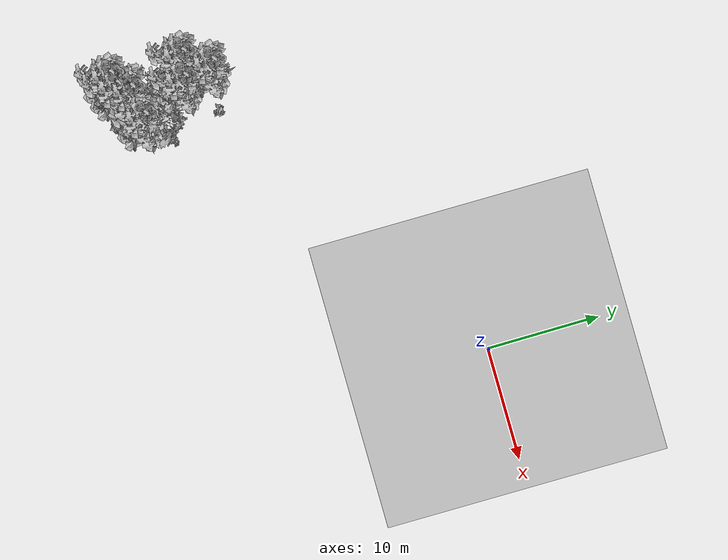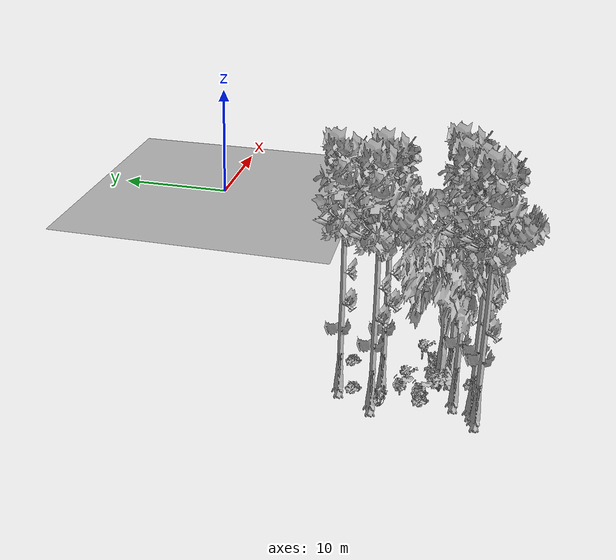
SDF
<sdf version="1.7">
 <world name="default">
  <model name="ground_plane">
   <static>1</static>
   <link name="link">
    <collision name="collision">
     <pose>-50 0 0 0 -0 0</pose>
     <geometry><plane><normal>0 0 1</normal><size>80 80</size></plane></geometry>
     <surface><contact><ode><min_depth>0.01</min_depth><max_vel>0</max_vel></ode></contact></surface>
    </collision>
    <visual name="grass">
     <cast_shadows>0</cast_shadows>
     <geometry>
      <mesh>
       <scale>0.46714285714285714 0.46714285714285714 0.1</scale>
       <uri>file://grass_plane/meshes/grass_plane.dae</uri>
      </mesh>
     </geometry>
    </visual>
   </link>
  </model>
  <model name="Tree 68">
   <static>1</static>
   <pose>-29.160404585748537 -23.46773453471713 0 1.57079 -0 0</pose>
   <link name="link">
    <collision name="collision">
     <geometry><mesh><scale>3.5 5 3.5</scale><uri>model://tree_9/meshes/tree_9.obj</uri></mesh></geometry>
    </collision>
    <visual name="visual">
     <geometry><mesh><scale>3.5 5 3.5</scale><uri>model://tree_9/meshes/tree_9.obj</uri></mesh></geometry>
    </visual>
   </link>
  </model>
  <model name="Tree 104">
   <static>1</static>
   <pose>-30.730838687065734 -24.843755545972684 0 1.57079 -0 0</pose>
   <link name="link">
    <collision name="collision">
     <geometry><mesh><scale>3.5 5 3.5</scale><uri>model://tree_9/meshes/tree_9.obj</uri></mesh></geometry>
    </collision>
    <visual name="visual">
     <geometry><mesh><scale>3.5 5 3.5</scale><uri>model://tree_9/meshes/tree_9.obj</uri></mesh></geometry>
    </visual>
   </link>
  </model>
  <model name="Tree 124">
   <static>1</static>
   <pose>-29.453827579441505 -16.343926511081108 0 1.57079 -0 0</pose>
   <link name="link">
    <collision name="collision">
     <geometry><mesh><scale>3.5 5 3.5</scale><uri>model://tree_9/meshes/tree_9.obj</uri></mesh></geometry>
    </collision>
    <visual name="visual">
     <geometry><mesh><scale>3.5 5 3.5</scale><uri>model://tree_9/meshes/tree_9.obj</uri></mesh></geometry>
    </visual>
   </link>
  </model>
  <model name="Tree 226">
   <static>1</static>
   <pose>-27.964741409401206 -22.478108977367963 0 1.57079 -0 0</pose>
   <link name="link">
    <collision name="collision">
     <geometry><mesh><scale>3.5 5 3.5</scale><uri>model://tree_2/meshes/tree_2.obj</uri></mesh></geometry>
    </collision>
    <visual name="visual">
     <geometry><mesh><scale>3.5 5 3.5</scale><uri>model://tree_2/meshes/tree_2.obj</uri></mesh></geometry>
    </visual>
   </link>
  </model>
  <model name="Tree 381">
   <static>1</static>
   <pose>-30.847711645143363 -18.558601405246016 0 1.57079 -0 0</pose>
   <link name="link">
    <collision name="collision">
     <geometry><mesh><scale>3.5 5 3.5</scale><uri>model://tree_9/meshes/tree_9.obj</uri></mesh></geometry>
    </collision>
    <visual name="visual">
     <geometry><mesh><scale>3.5 5 3.5</scale><uri>model://tree_9/meshes/tree_9.obj</uri></mesh></geometry>
    </visual>
   </link>
  </model>
  <model name="Tree 413">
   <static>1</static>
   <pose>-26.677088992929868 -23.019337194751905 0 1.57079 -0 0</pose>
   <link name="link">
    <collision name="collision">
     <geometry><mesh><scale>3.5 5 3.5</scale><uri>model://tree_9/meshes/tree_9.obj</uri></mesh></geometry>
    </collision>
    <visual name="visual">
     <geometry><mesh><scale>3.5 5 3.5</scale><uri>model://tree_9/meshes/tree_9.obj</uri></mesh></geometry>
    </visual>
   </link>
  </model>
  <model name="Tree 544">
   <static>1</static>
   <pose>-28.82792518967761 -18.96286364967264 0 1.57079 -0 0</pose>
   <link name="link">
    <collision name="collision">
     <geometry><mesh><scale>3.5 5 3.5</scale><uri>model://tree_9/meshes/tree_9.obj</uri></mesh></geometry>
    </collision>
    <visual name="visual">
     <geometry><mesh><scale>3.5 5 3.5</scale><uri>model://tree_9/meshes/tree_9.obj</uri></mesh></geometry>
    </visual>
   </link>
  </model>
  <model name="Tree 548">
   <static>1</static>
   <pose>-29.74009971208872 -24.534514518199913 0 1.57079 -0 0</pose>
   <link name="link">
    <collision name="collision">
     <geometry><mesh><scale>3.5 5 3.5</scale><uri>model://tree_9/meshes/tree_9.obj</uri></mesh></geometry>
    </collision>
    <visual name="visual">
     <geometry><mesh><scale>3.5 5 3.5</scale><uri>model://tree_9/meshes/tree_9.obj</uri></mesh></geometry>
    </visual>
   </link>
  </model>
  <model name="Bush 2">
   <static>1</static>
   <pose>-30.740942153449605 -19.042010291801866 0 1.57079 -0 0</pose>
   <link name="link">
    <collision name="collision">
     <geometry><mesh><scale>2 2 2</scale><uri>model://bush_4/meshes/bush_4.obj</uri></mesh></geometry>
     <surface><contact><collide_without_contact>false</collide_without_contact></contact></surface>
    </collision>
    <visual name="visual">
     <geometry><mesh><scale>2 2 2</scale><uri>model://bush_4/meshes/bush_4.obj</uri></mesh></geometry>
    </visual>
   </link>
  </model>
  <model name="Bush 7">
   <static>1</static>
   <pose>-28.91273261081494 -21.383674987028005 0 1.57079 -0 0</pose>
   <link name="link">
    <collision name="collision">
     <geometry><mesh><scale>2 2 2</scale><uri>model://bush_2/meshes/bush_2.obj</uri></mesh></geometry>
     <surface><contact><collide_without_contact>false</collide_without_contact></contact></surface>
    </collision>
    <visual name="visual">
     <geometry><mesh><scale>2 2 2</scale><uri>model://bush_2/meshes/bush_2.obj</uri></mesh></geometry>
    </visual>
   </link>
  </model>
  <model name="Bush 86">
   <static>1</static>
   <pose>-29.71369120138754 -21.491706125232035 0 1.57079 -0 0</pose>
   <link name="link">
    <collision name="collision">
     <geometry><mesh><scale>2 2 2</scale><uri>model://bush_2/meshes/bush_2.obj</uri></mesh></geometry>
     <surface><contact><collide_without_contact>false</collide_without_contact></contact></surface>
    </collision>
    <visual name="visual">
     <geometry><mesh><scale>2 2 2</scale><uri>model://bush_2/meshes/bush_2.obj</uri></mesh></geometry>
    </visual>
   </link>
  </model>
  <model name="Bush 88">
   <static>1</static>
   <pose>-26.394651135677975 -22.700537472300564 0 1.57079 -0 0</pose>
   <link name="link">
    <collision name="collision">
     <geometry><mesh><scale>2 2 2</scale><uri>model://bush_2/meshes/bush_2.obj</uri></mesh></geometry>
     <surface><contact><collide_without_contact>false</collide_without_contact></contact></surface>
    </collision>
    <visual name="visual">
     <geometry><mesh><scale>2 2 2</scale><uri>model://bush_2/meshes/bush_2.obj</uri></mesh></geometry>
    </visual>
   </link>
  </model>
  <model name="Bush 116">
   <static>1</static>
   <pose>-28.249040073591413 -22.522263735624257 0 1.57079 -0 0</pose>
   <link name="link">
    <collision name="collision">
     <geometry><mesh><scale>2 2 2</scale><uri>model://bush_1/meshes/bush_1.obj</uri></mesh></geometry>
     <surface><contact><collide_without_contact>false</collide_without_contact></contact></surface>
    </collision>
    <visual name="visual">
     <geometry><mesh><scale>2 2 2</scale><uri>model://bush_1/meshes/bush_1.obj</uri></mesh></geometry>
    </visual>
   </link>
  </model>
  <model name="Bush 168">
   <static>1</static>
   <pose>-25.787088941177743 -22.06926896797894 0 1.57079 -0 0</pose>
   <link name="link">
    <collision name="collision">
     <geometry><mesh><scale>2 2 2</scale><uri>model://bush_4/meshes/bush_4.obj</uri></mesh></geometry>
     <surface><contact><collide_without_contact>false</collide_without_contact></contact></surface>
    </collision>
    <visual name="visual">
     <geometry><mesh><scale>2 2 2</scale><uri>model://bush_4/meshes/bush_4.obj</uri></mesh></geometry>
    </visual>
   </link>
  </model>
  <model name="Bush 230">
   <static>1</static>
   <pose>-27.15304759058455 -24.498329836712045 0 1.57079 -0 0</pose>
   <link name="link">
    <collision name="collision">
     <geometry><mesh><scale>2 2 2</scale><uri>model://bush_2/meshes/bush_2.obj</uri></mesh></geometry>
     <surface><contact><collide_without_contact>false</collide_without_contact></contact></surface>
    </collision>
    <visual name="visual">
     <geometry><mesh><scale>2 2 2</scale><uri>model://bush_2/meshes/bush_2.obj</uri></mesh></geometry>
    </visual>
   </link>
  </model>
  <model name="Bush 260">
   <static>1</static>
   <pose>-27.481004787790454 -22.40803254180932 0 1.57079 -0 0</pose>
   <link name="link">
    <collision name="collision">
     <geometry><mesh><scale>2 2 2</scale><uri>model://bush_1/meshes/bush_1.obj</uri></mesh></geometry>
     <surface><contact><collide_without_contact>false</collide_without_contact></contact></surface>
    </collision>
    <visual name="visual">
     <geometry><mesh><scale>2 2 2</scale><uri>model://bush_1/meshes/bush_1.obj</uri></mesh></geometry>
    </visual>
   </link>
  </model>
  <model name="Bush 399">
   <static>1</static>
   <pose>-29.44511512034098 -17.280058805828766 0 1.57079 -0 0</pose>
   <link name="link">
    <collision name="collision">
     <geometry><mesh><scale>2 2 2</scale><uri>model://bush_2/meshes/bush_2.obj</uri></mesh></geometry>
     <surface><contact><collide_without_contact>false</collide_without_contact></contact></surface>
    </collision>
    <visual name="visual">
     <geometry><mesh><scale>2 2 2</scale><uri>model://bush_2/meshes/bush_2.obj</uri></mesh></geometry>
    </visual>
   </link>
  </model>
  <model name="Bush 455">
   <static>1</static>
   <pose>-26.305233077545218 -16.783835333677963 0 1.57079 -0 0</pose>
   <link name="link">
    <collision name="collision">
     <geometry><mesh><scale>2 2 2</scale><uri>model://bush_2/meshes/bush_2.obj</uri></mesh></geometry>
     <surface><contact><collide_without_contact>false</collide_without_contact></contact></surface>
    </collision>
    <visual name="visual">
     <geometry><mesh><scale>2 2 2</scale><uri>model://bush_2/meshes/bush_2.obj</uri></mesh></geometry>
    </visual>
   </link>
  </model>
  <model name="Bush 538">
   <static>1</static>
   <pose>-28.19019029197283 -20.325945059157444 0 1.57079 -0 0</pose>
   <link name="link">
    <collision name="collision">
     <geometry><mesh><scale>2 2 2</scale><uri>model://bush_5/meshes/bush_5.obj</uri></mesh></geometry>
     <surface><contact><collide_without_contact>false</collide_without_contact></contact></surface>
    </collision>
    <visual name="visual">
     <geometry><mesh><scale>2 2 2</scale><uri>model://bush_5/meshes/bush_5.obj</uri></mesh></geometry>
    </visual>
   </link>
  </model>
  <model name="Bush 566">
   <static>1</static>
   <pose>-29.453258570099376 -21.380291316115184 0 1.57079 -0 0</pose>
   <link name="link">
    <collision name="collision">
     <geometry><mesh><scale>2 2 2</scale><uri>model://bush_0/meshes/bush_0.obj</uri></mesh></geometry>
     <surface><contact><collide_without_contact>false</collide_without_contact></contact></surface>
    </collision>
    <visual name="visual">
     <geometry><mesh><scale>2 2 2</scale><uri>model://bush_0/meshes/bush_0.obj</uri></mesh></geometry>
    </visual>
   </link>
  </model>
  <model name="Bush 592">
   <static>1</static>
   <pose>-29.243545313479416 -20.173353197194068 0 1.57079 -0 0</pose>
   <link name="link">
    <collision name="collision">
     <geometry><mesh><scale>2 2 2</scale><uri>model://bush_0/meshes/bush_0.obj</uri></mesh></geometry>
     <surface><contact><collide_without_contact>false</collide_without_contact></contact></surface>
    </collision>
    <visual name="visual">
     <geometry><mesh><scale>2 2 2</scale><uri>model://bush_0/meshes/bush_0.obj</uri></mesh></geometry>
    </visual>
   </link>
  </model>
  <model name="Bush 628">
   <static>1</static>
   <pose>-24.734203900809582 -21.136985746397183 0 1.57079 -0 0</pose>
   <link name="link">
    <collision name="collision">
     <geometry><mesh><scale>2 2 2</scale><uri>model://bush_5/meshes/bush_5.obj</uri></mesh></geometry>
     <surface><contact><collide_without_contact>false</collide_without_contact></contact></surface>
    </collision>
    <visual name="visual">
     <geometry><mesh><scale>2 2 2</scale><uri>model://bush_5/meshes/bush_5.obj</uri></mesh></geometry>
    </visual>
   </link>
  </model>
 </world>
</sdf>
